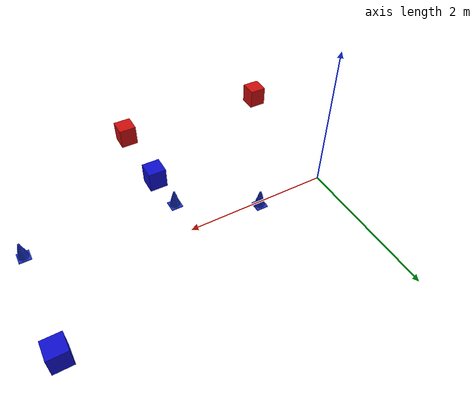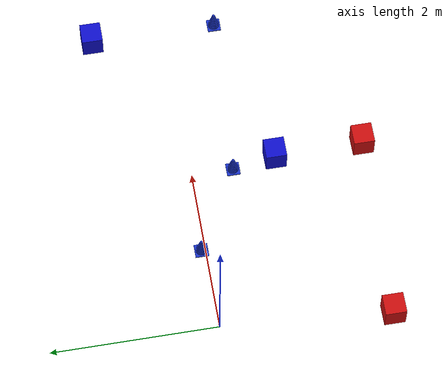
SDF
<sdf version="1.5">
 <world name="maze_6x5_v1_victimas">
  <physics type="ode">
   <max_step_size>0.001</max_step_size>
   <real_time_factor>1</real_time_factor>
   <real_time_update_rate>1000</real_time_update_rate>
   <gravity>0 0 -9.8</gravity>
  </physics>
  <plugin filename="gz-sim-physics-system" name="gz::sim::systems::Physics"/>
  <plugin filename="gz-sim-user-commands-system" name="gz::sim::systems::UserCommands"/>
  <plugin filename="gz-sim-scene-broadcaster-system" name="gz::sim::systems::SceneBroadcaster"/>
  <plugin filename="gz-sim-contact-system" name="gz::sim::systems::Contact"/>
  <plugin filename="gz-sim-sensors-system" name="gz::sim::systems::Sensors">
   <render_engine>ogre2</render_engine>
  </plugin>
  <plugin filename="gz-sim-imu-system" name="gz::sim::systems::Imu"/>
  <scene>
   <shadows>false</shadows>
   <ambient>0.2 0.2 0.2 1</ambient>
   <background>1 1 1 1</background>
   <grid>false</grid>
   <origin_visual>false</origin_visual>
  </scene>
  <include><uri>model://sun</uri></include>
  <light name="camera_spot_1_light" type="spot">
   <pose>-6 4 4 0 -1 -0.8</pose>
   <diffuse>0.5 0.5 0.5 1</diffuse>
   <specular>0.1 0.1 0.1 1</specular>
   <direction>0 0 -1</direction>
   <attenuation>
    <range>20</range>
    <constant>0.2</constant>
    <linear>0.01</linear>
    <quadratic>0.001</quadratic>
   </attenuation>
   <cast_shadows>0</cast_shadows>
   <spot><inner_angle>0.6</inner_angle><outer_angle>1</outer_angle><falloff>1</falloff></spot>
  </light>
  <light name="camera_spot_2_light" type="spot">
   <pose>5 -3 4 0 0.8 -0.6</pose>
   <diffuse>0.5 0.5 0.5 1</diffuse>
   <specular>0.1 0.1 0.1 1</specular>
   <direction>0 0 -1</direction>
   <attenuation>
    <range>20</range>
    <constant>0.3</constant>
    <linear>0.01</linear>
    <quadratic>0.001</quadratic>
   </attenuation>
   <cast_shadows>0</cast_shadows>
   <spot><inner_angle>0.6</inner_angle><outer_angle>1</outer_angle><falloff>1</falloff></spot>
  </light>
  <model name="marcas_color">
   <static>1</static>
   <link name="cuadrado_rojo_1">
    <pose>-0.1698 -2.0228 0.15 0 0 0</pose>
    <collision name="collision"><geometry><box><size>0.25 0.25 0.3</size></box></geometry></collision>
    <visual name="visual">
     <geometry><box><size>0.25 0.25 0.3</size></box></geometry>
     <material>
      <ambient>0.8 0.05 0.05 1</ambient>
      <diffuse>0.8 0.05 0.05 1</diffuse>
      <specular>0.1 0.1 0.1 1</specular>
     </material>
    </visual>
   </link>
   <link name="cuadrado_azul_1">
    <pose>2.0594 -1.0174 0.15 0 0 0</pose>
    <collision name="collision"><geometry><box><size>0.25 0.25 0.3</size></box></geometry></collision>
    <visual name="visual">
     <geometry><box><size>0.25 0.25 0.3</size></box></geometry>
     <material>
      <ambient>0.05 0.05 0.8 1</ambient>
      <diffuse>0.05 0.05 0.8 1</diffuse>
      <specular>0.1 0.1 0.1 1</specular>
     </material>
    </visual>
   </link>
   <link name="cuadrado_rojo_2">
    <pose>2.0734 -2.0864 0.15 0 0 0</pose>
    <collision name="collision"><geometry><box><size>0.25 0.25 0.3</size></box></geometry></collision>
    <visual name="visual">
     <geometry><box><size>0.25 0.25 0.3</size></box></geometry>
     <material>
      <ambient>0.8 0.05 0.05 1</ambient>
      <diffuse>0.8 0.05 0.05 1</diffuse>
      <specular>0.1 0.1 0.1 1</specular>
     </material>
    </visual>
   </link>
   <link name="cuadrado_azul_2">
    <pose>3.9811 0.9197 0.15 0 0 0</pose>
    <collision name="collision"><geometry><box><size>0.25 0.25 0.3</size></box></geometry></collision>
    <visual name="visual">
     <geometry><box><size>0.25 0.25 0.3</size></box></geometry>
     <material>
      <ambient>0.05 0.05 0.8 1</ambient>
      <diffuse>0.05 0.05 0.8 1</diffuse>
      <specular>0.1 0.1 0.1 1</specular>
     </material>
    </visual>
   </link>
  </model>
  <model name="senuelo_cono_frente">
   <static>1</static>
   <pose>1.0 0.05 0 0 0 0</pose>
   <link name="senuelo_cono_frente">
    <collision name="c0">
     <pose>0 0 0.0075 0 0 0</pose>
     <geometry><box><size>0.16 0.16 0.015</size></box></geometry>
    </collision>
    <visual name="v0">
     <pose>0 0 0.0075 0 0 0</pose>
     <geometry><box><size>0.16 0.16 0.015</size></box></geometry>
     <material>
      <ambient>0.10 0.20 0.80 1</ambient>
      <diffuse>0.10 0.20 0.80 1</diffuse>
      <specular>0.1 0.1 0.1 1</specular>
     </material>
    </visual>
    <collision name="c1">
     <pose>0 0 0.0297 0 0 0</pose>
     <geometry><cylinder><radius>0.0663</radius><length>0.0294</length></cylinder></geometry>
    </collision>
    <visual name="v1">
     <pose>0 0 0.0297 0 0 0</pose>
     <geometry><cylinder><radius>0.0663</radius><length>0.0294</length></cylinder></geometry>
     <material>
      <ambient>0.10 0.20 0.80 1</ambient>
      <diffuse>0.10 0.20 0.80 1</diffuse>
      <specular>0.1 0.1 0.1 1</specular>
     </material>
    </visual>
    <collision name="c2">
     <pose>0 0 0.0591 0 0 0</pose>
     <geometry><cylinder><radius>0.0588</radius><length>0.0294</length></cylinder></geometry>
    </collision>
    <visual name="v2">
     <pose>0 0 0.0591 0 0 0</pose>
     <geometry><cylinder><radius>0.0588</radius><length>0.0294</length></cylinder></geometry>
     <material>
      <ambient>0.10 0.20 0.80 1</ambient>
      <diffuse>0.10 0.20 0.80 1</diffuse>
      <specular>0.1 0.1 0.1 1</specular>
     </material>
    </visual>
    <collision name="c3">
     <pose>0 0 0.0884 0 0 0</pose>
     <geometry><cylinder><radius>0.0513</radius><length>0.0294</length></cylinder></geometry>
    </collision>
    <visual name="v3">
     <pose>0 0 0.0884 0 0 0</pose>
     <geometry><cylinder><radius>0.0513</radius><length>0.0294</length></cylinder></geometry>
     <material>
      <ambient>0.10 0.20 0.80 1</ambient>
      <diffuse>0.10 0.20 0.80 1</diffuse>
      <specular>0.1 0.1 0.1 1</specular>
     </material>
    </visual>
    <collision name="c4">
     <pose>0 0 0.1178 0 0 0</pose>
     <geometry><cylinder><radius>0.0437</radius><length>0.0294</length></cylinder></geometry>
    </collision>
    <visual name="v4">
     <pose>0 0 0.1178 0 0 0</pose>
     <geometry><cylinder><radius>0.0437</radius><length>0.0294</length></cylinder></geometry>
     <material>
      <ambient>0.10 0.20 0.80 1</ambient>
      <diffuse>0.10 0.20 0.80 1</diffuse>
      <specular>0.1 0.1 0.1 1</specular>
     </material>
    </visual>
    <collision name="c5">
     <pose>0 0 0.1472 0 0 0</pose>
     <geometry><cylinder><radius>0.0363</radius><length>0.0294</length></cylinder></geometry>
    </collision>
    <visual name="v5">
     <pose>0 0 0.1472 0 0 0</pose>
     <geometry><cylinder><radius>0.0363</radius><length>0.0294</length></cylinder></geometry>
     <material>
      <ambient>0.10 0.20 0.80 1</ambient>
      <diffuse>0.10 0.20 0.80 1</diffuse>
      <specular>0.1 0.1 0.1 1</specular>
     </material>
    </visual>
    <collision name="c6">
     <pose>0 0 0.1766 0 0 0</pose>
     <geometry><cylinder><radius>0.0288</radius><length>0.0294</length></cylinder></geometry>
    </collision>
    <visual name="v6">
     <pose>0 0 0.1766 0 0 0</pose>
     <geometry><cylinder><radius>0.0288</radius><length>0.0294</length></cylinder></geometry>
     <material>
      <ambient>0.10 0.20 0.80 1</ambient>
      <diffuse>0.10 0.20 0.80 1</diffuse>
      <specular>0.1 0.1 0.1 1</specular>
     </material>
    </visual>
    <collision name="c7">
     <pose>0 0 0.2059 0 0 0</pose>
     <geometry><cylinder><radius>0.0213</radius><length>0.0294</length></cylinder></geometry>
    </collision>
    <visual name="v7">
     <pose>0 0 0.2059 0 0 0</pose>
     <geometry><cylinder><radius>0.0213</radius><length>0.0294</length></cylinder></geometry>
     <material>
      <ambient>0.10 0.20 0.80 1</ambient>
      <diffuse>0.10 0.20 0.80 1</diffuse>
      <specular>0.1 0.1 0.1 1</specular>
     </material>
    </visual>
    <collision name="c8">
     <pose>0 0 0.2353 0 0 0</pose>
     <geometry><cylinder><radius>0.0138</radius><length>0.0294</length></cylinder></geometry>
    </collision>
    <visual name="v8">
     <pose>0 0 0.2353 0 0 0</pose>
     <geometry><cylinder><radius>0.0138</radius><length>0.0294</length></cylinder></geometry>
     <material>
      <ambient>0.10 0.20 0.80 1</ambient>
      <diffuse>0.10 0.20 0.80 1</diffuse>
      <specular>0.1 0.1 0.1 1</specular>
     </material>
    </visual>
   </link>
  </model>
  <model name="senuelo_cono_salida">
   <static>1</static>
   <pose>2.0 -0.5 0 0 0 0</pose>
   <link name="senuelo_cono_salida">
    <collision name="c0">
     <pose>0 0 0.0075 0 0 0</pose>
     <geometry><box><size>0.16 0.16 0.015</size></box></geometry>
    </collision>
    <visual name="v0">
     <pose>0 0 0.0075 0 0 0</pose>
     <geometry><box><size>0.16 0.16 0.015</size></box></geometry>
     <material>
      <ambient>0.10 0.20 0.80 1</ambient>
      <diffuse>0.10 0.20 0.80 1</diffuse>
      <specular>0.1 0.1 0.1 1</specular>
     </material>
    </visual>
    <collision name="c1">
     <pose>0 0 0.0297 0 0 0</pose>
     <geometry><cylinder><radius>0.0663</radius><length>0.0294</length></cylinder></geometry>
    </collision>
    <visual name="v1">
     <pose>0 0 0.0297 0 0 0</pose>
     <geometry><cylinder><radius>0.0663</radius><length>0.0294</length></cylinder></geometry>
     <material>
      <ambient>0.10 0.20 0.80 1</ambient>
      <diffuse>0.10 0.20 0.80 1</diffuse>
      <specular>0.1 0.1 0.1 1</specular>
     </material>
    </visual>
    <collision name="c2">
     <pose>0 0 0.0591 0 0 0</pose>
     <geometry><cylinder><radius>0.0588</radius><length>0.0294</length></cylinder></geometry>
    </collision>
    <visual name="v2">
     <pose>0 0 0.0591 0 0 0</pose>
     <geometry><cylinder><radius>0.0588</radius><length>0.0294</length></cylinder></geometry>
     <material>
      <ambient>0.10 0.20 0.80 1</ambient>
      <diffuse>0.10 0.20 0.80 1</diffuse>
      <specular>0.1 0.1 0.1 1</specular>
     </material>
    </visual>
    <collision name="c3">
     <pose>0 0 0.0884 0 0 0</pose>
     <geometry><cylinder><radius>0.0513</radius><length>0.0294</length></cylinder></geometry>
    </collision>
    <visual name="v3">
     <pose>0 0 0.0884 0 0 0</pose>
     <geometry><cylinder><radius>0.0513</radius><length>0.0294</length></cylinder></geometry>
     <material>
      <ambient>0.10 0.20 0.80 1</ambient>
      <diffuse>0.10 0.20 0.80 1</diffuse>
      <specular>0.1 0.1 0.1 1</specular>
     </material>
    </visual>
    <collision name="c4">
     <pose>0 0 0.1178 0 0 0</pose>
     <geometry><cylinder><radius>0.0437</radius><length>0.0294</length></cylinder></geometry>
    </collision>
    <visual name="v4">
     <pose>0 0 0.1178 0 0 0</pose>
     <geometry><cylinder><radius>0.0437</radius><length>0.0294</length></cylinder></geometry>
     <material>
      <ambient>0.10 0.20 0.80 1</ambient>
      <diffuse>0.10 0.20 0.80 1</diffuse>
      <specular>0.1 0.1 0.1 1</specular>
     </material>
    </visual>
    <collision name="c5">
     <pose>0 0 0.1472 0 0 0</pose>
     <geometry><cylinder><radius>0.0363</radius><length>0.0294</length></cylinder></geometry>
    </collision>
    <visual name="v5">
     <pose>0 0 0.1472 0 0 0</pose>
     <geometry><cylinder><radius>0.0363</radius><length>0.0294</length></cylinder></geometry>
     <material>
      <ambient>0.10 0.20 0.80 1</ambient>
      <diffuse>0.10 0.20 0.80 1</diffuse>
      <specular>0.1 0.1 0.1 1</specular>
     </material>
    </visual>
    <collision name="c6">
     <pose>0 0 0.1766 0 0 0</pose>
     <geometry><cylinder><radius>0.0288</radius><length>0.0294</length></cylinder></geometry>
    </collision>
    <visual name="v6">
     <pose>0 0 0.1766 0 0 0</pose>
     <geometry><cylinder><radius>0.0288</radius><length>0.0294</length></cylinder></geometry>
     <material>
      <ambient>0.10 0.20 0.80 1</ambient>
      <diffuse>0.10 0.20 0.80 1</diffuse>
      <specular>0.1 0.1 0.1 1</specular>
     </material>
    </visual>
    <collision name="c7">
     <pose>0 0 0.2059 0 0 0</pose>
     <geometry><cylinder><radius>0.0213</radius><length>0.0294</length></cylinder></geometry>
    </collision>
    <visual name="v7">
     <pose>0 0 0.2059 0 0 0</pose>
     <geometry><cylinder><radius>0.0213</radius><length>0.0294</length></cylinder></geometry>
     <material>
      <ambient>0.10 0.20 0.80 1</ambient>
      <diffuse>0.10 0.20 0.80 1</diffuse>
      <specular>0.1 0.1 0.1 1</specular>
     </material>
    </visual>
    <collision name="c8">
     <pose>0 0 0.2353 0 0 0</pose>
     <geometry><cylinder><radius>0.0138</radius><length>0.0294</length></cylinder></geometry>
    </collision>
    <visual name="v8">
     <pose>0 0 0.2353 0 0 0</pose>
     <geometry><cylinder><radius>0.0138</radius><length>0.0294</length></cylinder></geometry>
     <material>
      <ambient>0.10 0.20 0.80 1</ambient>
      <diffuse>0.10 0.20 0.80 1</diffuse>
      <specular>0.1 0.1 0.1 1</specular>
     </material>
    </visual>
   </link>
  </model>
  <model name="senuelo_cono_pasillo">
   <static>1</static>
   <pose>4.0 -0.6 0 0 0 0</pose>
   <link name="senuelo_cono_pasillo">
    <collision name="c0">
     <pose>0 0 0.0075 0 0 0</pose>
     <geometry><box><size>0.16 0.16 0.015</size></box></geometry>
    </collision>
    <visual name="v0">
     <pose>0 0 0.0075 0 0 0</pose>
     <geometry><box><size>0.16 0.16 0.015</size></box></geometry>
     <material>
      <ambient>0.10 0.20 0.80 1</ambient>
      <diffuse>0.10 0.20 0.80 1</diffuse>
      <specular>0.1 0.1 0.1 1</specular>
     </material>
    </visual>
    <collision name="c1">
     <pose>0 0 0.0297 0 0 0</pose>
     <geometry><cylinder><radius>0.0663</radius><length>0.0294</length></cylinder></geometry>
    </collision>
    <visual name="v1">
     <pose>0 0 0.0297 0 0 0</pose>
     <geometry><cylinder><radius>0.0663</radius><length>0.0294</length></cylinder></geometry>
     <material>
      <ambient>0.10 0.20 0.80 1</ambient>
      <diffuse>0.10 0.20 0.80 1</diffuse>
      <specular>0.1 0.1 0.1 1</specular>
     </material>
    </visual>
    <collision name="c2">
     <pose>0 0 0.0591 0 0 0</pose>
     <geometry><cylinder><radius>0.0588</radius><length>0.0294</length></cylinder></geometry>
    </collision>
    <visual name="v2">
     <pose>0 0 0.0591 0 0 0</pose>
     <geometry><cylinder><radius>0.0588</radius><length>0.0294</length></cylinder></geometry>
     <material>
      <ambient>0.10 0.20 0.80 1</ambient>
      <diffuse>0.10 0.20 0.80 1</diffuse>
      <specular>0.1 0.1 0.1 1</specular>
     </material>
    </visual>
    <collision name="c3">
     <pose>0 0 0.0884 0 0 0</pose>
     <geometry><cylinder><radius>0.0513</radius><length>0.0294</length></cylinder></geometry>
    </collision>
    <visual name="v3">
     <pose>0 0 0.0884 0 0 0</pose>
     <geometry><cylinder><radius>0.0513</radius><length>0.0294</length></cylinder></geometry>
     <material>
      <ambient>0.10 0.20 0.80 1</ambient>
      <diffuse>0.10 0.20 0.80 1</diffuse>
      <specular>0.1 0.1 0.1 1</specular>
     </material>
    </visual>
    <collision name="c4">
     <pose>0 0 0.1178 0 0 0</pose>
     <geometry><cylinder><radius>0.0437</radius><length>0.0294</length></cylinder></geometry>
    </collision>
    <visual name="v4">
     <pose>0 0 0.1178 0 0 0</pose>
     <geometry><cylinder><radius>0.0437</radius><length>0.0294</length></cylinder></geometry>
     <material>
      <ambient>0.10 0.20 0.80 1</ambient>
      <diffuse>0.10 0.20 0.80 1</diffuse>
      <specular>0.1 0.1 0.1 1</specular>
     </material>
    </visual>
    <collision name="c5">
     <pose>0 0 0.1472 0 0 0</pose>
     <geometry><cylinder><radius>0.0363</radius><length>0.0294</length></cylinder></geometry>
    </collision>
    <visual name="v5">
     <pose>0 0 0.1472 0 0 0</pose>
     <geometry><cylinder><radius>0.0363</radius><length>0.0294</length></cylinder></geometry>
     <material>
      <ambient>0.10 0.20 0.80 1</ambient>
      <diffuse>0.10 0.20 0.80 1</diffuse>
      <specular>0.1 0.1 0.1 1</specular>
     </material>
    </visual>
    <collision name="c6">
     <pose>0 0 0.1766 0 0 0</pose>
     <geometry><cylinder><radius>0.0288</radius><length>0.0294</length></cylinder></geometry>
    </collision>
    <visual name="v6">
     <pose>0 0 0.1766 0 0 0</pose>
     <geometry><cylinder><radius>0.0288</radius><length>0.0294</length></cylinder></geometry>
     <material>
      <ambient>0.10 0.20 0.80 1</ambient>
      <diffuse>0.10 0.20 0.80 1</diffuse>
      <specular>0.1 0.1 0.1 1</specular>
     </material>
    </visual>
    <collision name="c7">
     <pose>0 0 0.2059 0 0 0</pose>
     <geometry><cylinder><radius>0.0213</radius><length>0.0294</length></cylinder></geometry>
    </collision>
    <visual name="v7">
     <pose>0 0 0.2059 0 0 0</pose>
     <geometry><cylinder><radius>0.0213</radius><length>0.0294</length></cylinder></geometry>
     <material>
      <ambient>0.10 0.20 0.80 1</ambient>
      <diffuse>0.10 0.20 0.80 1</diffuse>
      <specular>0.1 0.1 0.1 1</specular>
     </material>
    </visual>
    <collision name="c8">
     <pose>0 0 0.2353 0 0 0</pose>
     <geometry><cylinder><radius>0.0138</radius><length>0.0294</length></cylinder></geometry>
    </collision>
    <visual name="v8">
     <pose>0 0 0.2353 0 0 0</pose>
     <geometry><cylinder><radius>0.0138</radius><length>0.0294</length></cylinder></geometry>
     <material>
      <ambient>0.10 0.20 0.80 1</ambient>
      <diffuse>0.10 0.20 0.80 1</diffuse>
      <specular>0.1 0.1 0.1 1</specular>
     </material>
    </visual>
   </link>
  </model>
 </world>
</sdf>
